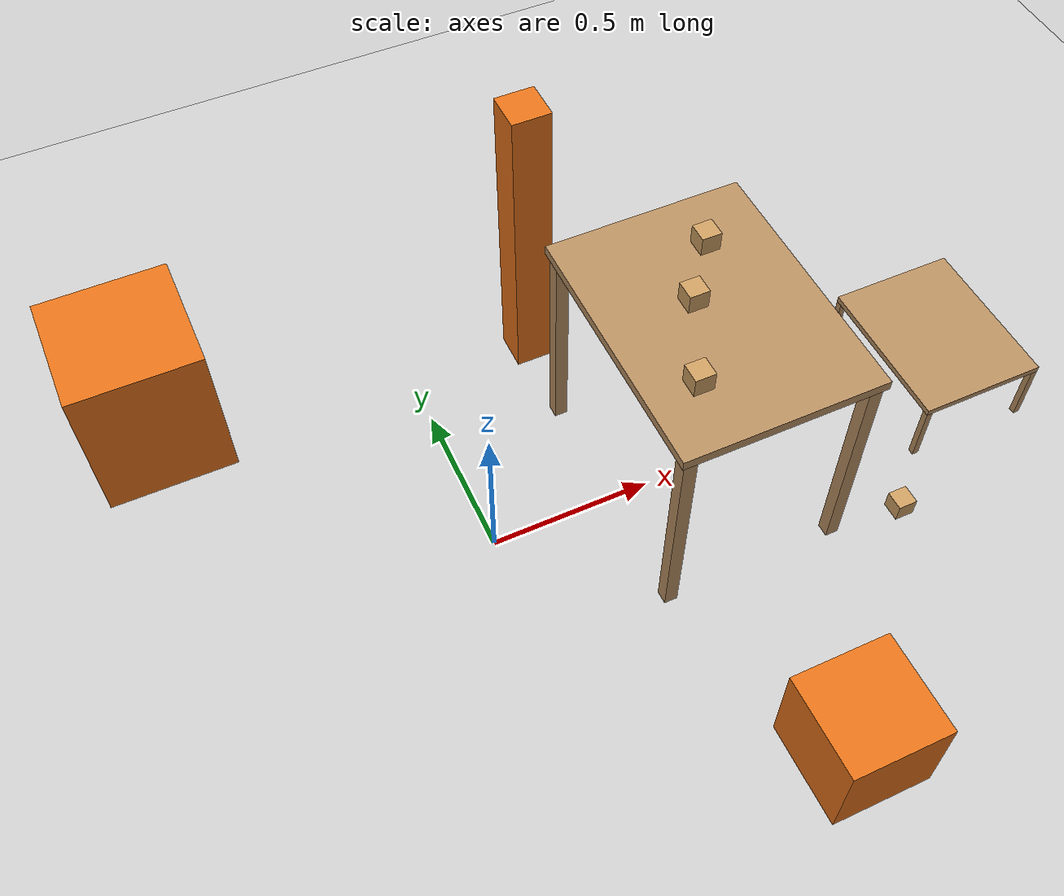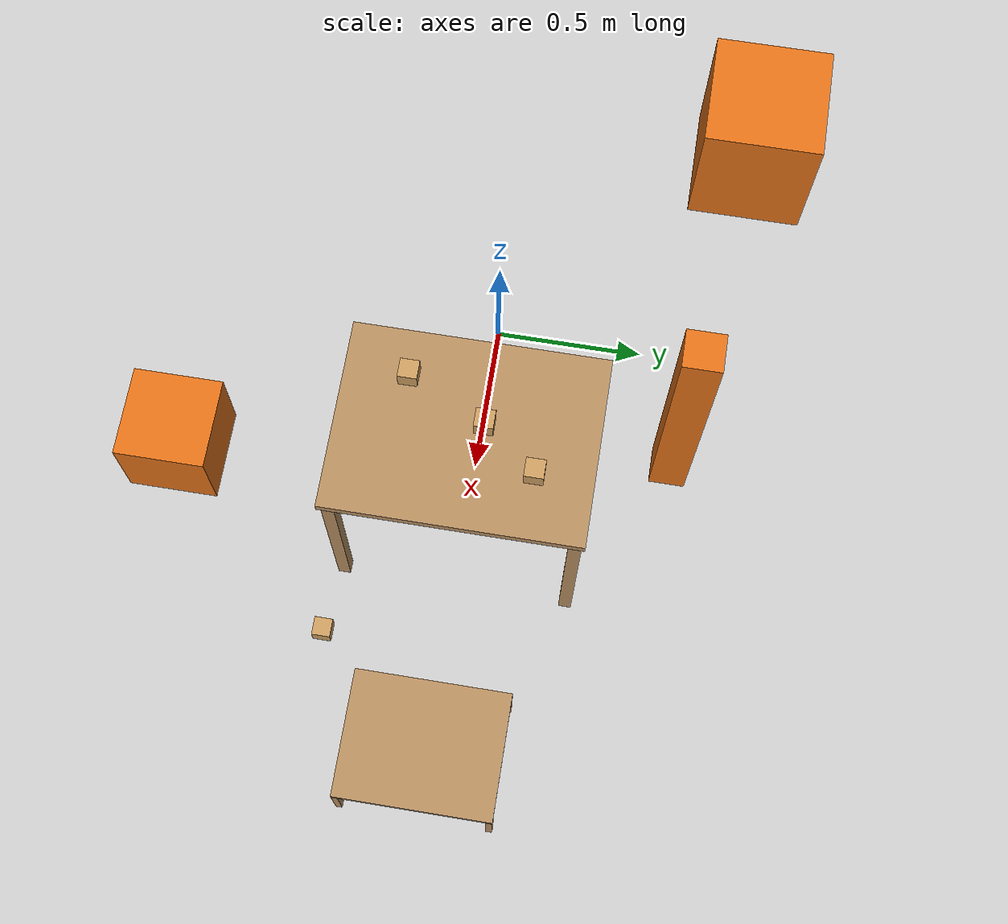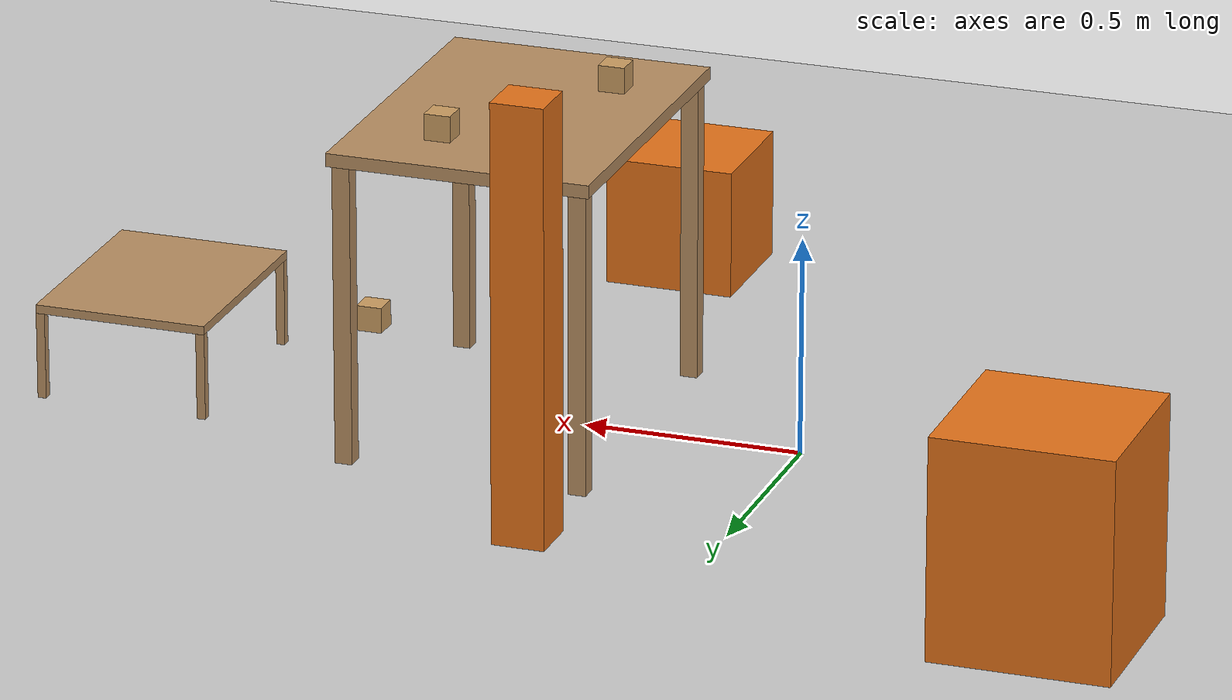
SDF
<?xml version="1.0" ?>
<!-- Material-handling cell: work table with payloads, a drop shelf and obstacles.
     UR5 pedestal stands at the origin, the mobile manipulator starts at (1.0, -0.9). -->
<sdf version="1.8">
  <world name="material_handling">
    <physics name="1ms" type="ignored">
      <max_step_size>0.001</max_step_size>
      <real_time_factor>1.0</real_time_factor>
    </physics>
    <plugin filename="gz-sim-physics-system" name="gz::sim::systems::Physics"/>
    <plugin filename="gz-sim-user-commands-system" name="gz::sim::systems::UserCommands"/>
    <plugin filename="gz-sim-scene-broadcaster-system" name="gz::sim::systems::SceneBroadcaster"/>
    <plugin filename="gz-sim-sensors-system" name="gz::sim::systems::Sensors">
      <render_engine>ogre2</render_engine>
    </plugin>

    <light type="directional" name="sun">
      <cast_shadows>true</cast_shadows>
      <pose>0 0 10 0 0 0</pose>
      <diffuse>0.8 0.8 0.8 1</diffuse>
      <specular>0.2 0.2 0.2 1</specular>
      <direction>-0.5 0.1 -0.9</direction>
    </light>

    <model name="ground_plane">
      <static>true</static>
      <link name="link">
        <collision name="c"><geometry><plane><normal>0 0 1</normal><size>20 20</size></plane></geometry></collision>
        <visual name="v"><geometry><plane><normal>0 0 1</normal><size>20 20</size></plane></geometry>
          <material><ambient>0.8 0.8 0.8 1</ambient><diffuse>0.8 0.8 0.8 1</diffuse></material></visual>
      </link>
    </model>

    <model name="work_table">
      <static>true</static>
      <pose>0.65 0 0.705 0 0 0</pose>
      <link name="link">
        <collision name="c"><geometry><box><size>0.6 0.8 0.03</size></box></geometry></collision>
        <visual name="v"><geometry><box><size>0.6 0.8 0.03</size></box></geometry>
          <material><ambient>0.72 0.56 0.38 1</ambient><diffuse>0.72 0.56 0.38 1</diffuse></material></visual>
      </link>
    </model>
    <model name="work_table_leg_0">
      <static>true</static>
      <pose>0.38 -0.37 0.345 0 0 0</pose>
      <link name="link">
        <collision name="c"><geometry><box><size>0.04 0.04 0.69</size></box></geometry></collision>
        <visual name="v"><geometry><box><size>0.04 0.04 0.69</size></box></geometry>
          <material><ambient>0.72 0.56 0.38 1</ambient><diffuse>0.72 0.56 0.38 1</diffuse></material></visual>
      </link>
    </model>
    <model name="work_table_leg_1">
      <static>true</static>
      <pose>0.38 0.37 0.345 0 0 0</pose>
      <link name="link">
        <collision name="c"><geometry><box><size>0.04 0.04 0.69</size></box></geometry></collision>
        <visual name="v"><geometry><box><size>0.04 0.04 0.69</size></box></geometry>
          <material><ambient>0.72 0.56 0.38 1</ambient><diffuse>0.72 0.56 0.38 1</diffuse></material></visual>
      </link>
    </model>
    <model name="work_table_leg_2">
      <static>true</static>
      <pose>0.92 -0.37 0.345 0 0 0</pose>
      <link name="link">
        <collision name="c"><geometry><box><size>0.04 0.04 0.69</size></box></geometry></collision>
        <visual name="v"><geometry><box><size>0.04 0.04 0.69</size></box></geometry>
          <material><ambient>0.72 0.56 0.38 1</ambient><diffuse>0.72 0.56 0.38 1</diffuse></material></visual>
      </link>
    </model>
    <model name="work_table_leg_3">
      <static>true</static>
      <pose>0.92 0.37 0.345 0 0 0</pose>
      <link name="link">
        <collision name="c"><geometry><box><size>0.04 0.04 0.69</size></box></geometry></collision>
        <visual name="v"><geometry><box><size>0.04 0.04 0.69</size></box></geometry>
          <material><ambient>0.72 0.56 0.38 1</ambient><diffuse>0.72 0.56 0.38 1</diffuse></material></visual>
      </link>
    </model>
    <model name="payload_box_1">
      <pose>0.5 -0.2 0.75 0 0 0</pose>
      <link name="link">
        <inertial><mass>0.05</mass><inertia><ixx>3.000e-05</ixx><iyy>3.000e-05</iyy><izz>3.000e-05</izz></inertia></inertial>
        <collision name="c"><geometry><box><size>0.06 0.06 0.06</size></box></geometry>
          <surface><friction><ode><mu>1.0</mu><mu2>1.0</mu2></ode></friction></surface></collision>
        <visual name="v"><geometry><box><size>0.06 0.06 0.06</size></box></geometry>
          <material><ambient>0.8 0.62 0.38 1</ambient><diffuse>0.8 0.62 0.38 1</diffuse></material></visual>
      </link>
    </model>
    <model name="payload_box_2">
      <pose>0.62 0.05 0.75 0 0 0</pose>
      <link name="link">
        <inertial><mass>0.05</mass><inertia><ixx>3.000e-05</ixx><iyy>3.000e-05</iyy><izz>3.000e-05</izz></inertia></inertial>
        <collision name="c"><geometry><box><size>0.06 0.06 0.06</size></box></geometry>
          <surface><friction><ode><mu>1.0</mu><mu2>1.0</mu2></ode></friction></surface></collision>
        <visual name="v"><geometry><box><size>0.06 0.06 0.06</size></box></geometry>
          <material><ambient>0.8 0.62 0.38 1</ambient><diffuse>0.8 0.62 0.38 1</diffuse></material></visual>
      </link>
    </model>
    <model name="payload_box_3">
      <pose>0.75 0.22 0.75 0 0 0</pose>
      <link name="link">
        <inertial><mass>0.05</mass><inertia><ixx>3.000e-05</ixx><iyy>3.000e-05</iyy><izz>3.000e-05</izz></inertia></inertial>
        <collision name="c"><geometry><box><size>0.06 0.06 0.06</size></box></geometry>
          <surface><friction><ode><mu>1.0</mu><mu2>1.0</mu2></ode></friction></surface></collision>
        <visual name="v"><geometry><box><size>0.06 0.06 0.06</size></box></geometry>
          <material><ambient>0.8 0.62 0.38 1</ambient><diffuse>0.8 0.62 0.38 1</diffuse></material></visual>
      </link>
    </model>
    <model name="obstacle_column">
      <static>true</static>
      <pose>0.4 0.65 0.5 0 0 0</pose>
      <link name="link">
        <collision name="c"><geometry><box><size>0.12 0.12 1</size></box></geometry></collision>
        <visual name="v"><geometry><box><size>0.12 0.12 1</size></box></geometry>
          <material><ambient>0.9 0.45 0.1 1</ambient><diffuse>0.9 0.45 0.1 1</diffuse></material></visual>
      </link>
    </model>
    <model name="drop_shelf">
      <static>true</static>
      <pose>1.5 0 0.21 0 0 0</pose>
      <link name="link">
        <collision name="c"><geometry><box><size>0.4 0.5 0.02</size></box></geometry></collision>
        <visual name="v"><geometry><box><size>0.4 0.5 0.02</size></box></geometry>
          <material><ambient>0.72 0.56 0.38 1</ambient><diffuse>0.72 0.56 0.38 1</diffuse></material></visual>
      </link>
    </model>
    <model name="drop_shelf_leg_0">
      <static>true</static>
      <pose>1.31 -0.24 0.1 0 0 0</pose>
      <link name="link">
        <collision name="c"><geometry><box><size>0.02 0.02 0.2</size></box></geometry></collision>
        <visual name="v"><geometry><box><size>0.02 0.02 0.2</size></box></geometry>
          <material><ambient>0.72 0.56 0.38 1</ambient><diffuse>0.72 0.56 0.38 1</diffuse></material></visual>
      </link>
    </model>
    <model name="drop_shelf_leg_1">
      <static>true</static>
      <pose>1.31 0.24 0.1 0 0 0</pose>
      <link name="link">
        <collision name="c"><geometry><box><size>0.02 0.02 0.2</size></box></geometry></collision>
        <visual name="v"><geometry><box><size>0.02 0.02 0.2</size></box></geometry>
          <material><ambient>0.72 0.56 0.38 1</ambient><diffuse>0.72 0.56 0.38 1</diffuse></material></visual>
      </link>
    </model>
    <model name="drop_shelf_leg_2">
      <static>true</static>
      <pose>1.69 -0.24 0.1 0 0 0</pose>
      <link name="link">
        <collision name="c"><geometry><box><size>0.02 0.02 0.2</size></box></geometry></collision>
        <visual name="v"><geometry><box><size>0.02 0.02 0.2</size></box></geometry>
          <material><ambient>0.72 0.56 0.38 1</ambient><diffuse>0.72 0.56 0.38 1</diffuse></material></visual>
      </link>
    </model>
    <model name="drop_shelf_leg_3">
      <static>true</static>
      <pose>1.69 0.24 0.1 0 0 0</pose>
      <link name="link">
        <collision name="c"><geometry><box><size>0.02 0.02 0.2</size></box></geometry></collision>
        <visual name="v"><geometry><box><size>0.02 0.02 0.2</size></box></geometry>
          <material><ambient>0.72 0.56 0.38 1</ambient><diffuse>0.72 0.56 0.38 1</diffuse></material></visual>
      </link>
    </model>
    <model name="payload_box_4">
      <pose>1.15 -0.4 0.03 0 0 0</pose>
      <link name="link">
        <inertial><mass>0.05</mass><inertia><ixx>3.000e-05</ixx><iyy>3.000e-05</iyy><izz>3.000e-05</izz></inertia></inertial>
        <collision name="c"><geometry><box><size>0.06 0.06 0.06</size></box></geometry>
          <surface><friction><ode><mu>1.0</mu><mu2>1.0</mu2></ode></friction></surface></collision>
        <visual name="v"><geometry><box><size>0.06 0.06 0.06</size></box></geometry>
          <material><ambient>0.8 0.62 0.38 1</ambient><diffuse>0.8 0.62 0.38 1</diffuse></material></visual>
      </link>
    </model>
    <model name="obstacle_cabinet">
      <static>true</static>
      <pose>-0.8 0.8 0.25 0 0 0</pose>
      <link name="link">
        <collision name="c"><geometry><box><size>0.4 0.4 0.5</size></box></geometry></collision>
        <visual name="v"><geometry><box><size>0.4 0.4 0.5</size></box></geometry>
          <material><ambient>0.9 0.45 0.1 1</ambient><diffuse>0.9 0.45 0.1 1</diffuse></material></visual>
      </link>
    </model>
    <model name="obstacle_crate">
      <static>true</static>
      <pose>0.6 -1 0.15 0 0 0</pose>
      <link name="link">
        <collision name="c"><geometry><box><size>0.3 0.3 0.3</size></box></geometry></collision>
        <visual name="v"><geometry><box><size>0.3 0.3 0.3</size></box></geometry>
          <material><ambient>0.9 0.45 0.1 1</ambient><diffuse>0.9 0.45 0.1 1</diffuse></material></visual>
      </link>
    </model>
  </world>
</sdf>
